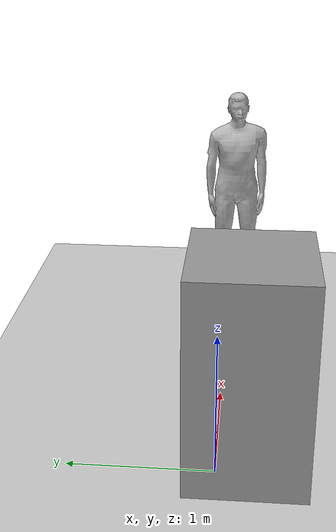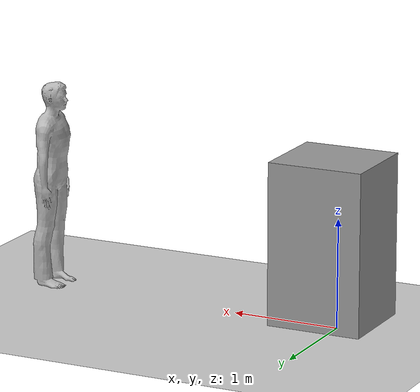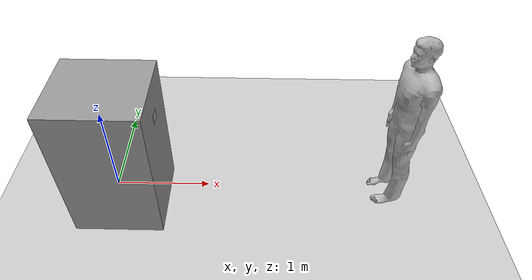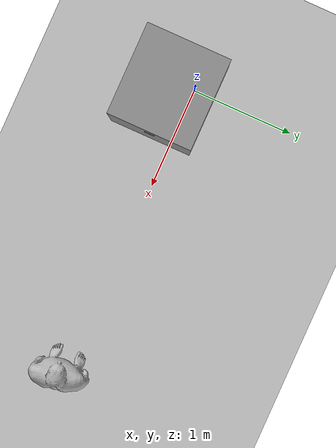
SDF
<sdf version="1.6">
 <world name="default">
  <light name="sun" type="directional">
   <pose>0 0 10 0 -0 0</pose>
   <diffuse>0.8 0.8 0.8 1</diffuse>
   <specular>0.2 0.2 0.2 1</specular>
   <attenuation>
    <range>1000</range>
    <constant>0.9</constant>
    <linear>0.01</linear>
    <quadratic>0.001</quadratic>
   </attenuation>
   <direction>-0.5 0.1 -0.9</direction>
  </light>
  <model name="ground_plane">
   <static>1</static>
   <link name="link">
    <collision name="collision">
     <geometry><plane><normal>0 0 1</normal><size>100 100</size></plane></geometry>
     <surface>
      <contact><collide_bitmask>65535</collide_bitmask></contact>
      <friction><ode><mu>100</mu><mu2>50</mu2></ode></friction>
     </surface>
    </collision>
    <visual name="visual">
     <cast_shadows>0</cast_shadows>
     <geometry><plane><normal>0 0 1</normal><size>100 100</size></plane></geometry>
     <material>
      <script><uri>file://media/materials/scripts/gazebo.material</uri><name>Gazebo/Grey</name></script>
     </material>
    </visual>
   </link>
  </model>
  <gravity>0 0 -9.8</gravity>
  <magnetic_field>6e-06 2.3e-05 -4.2e-05</magnetic_field>
  <atmosphere type="adiabatic"/>
  <physics name="default_physics" default="0" type="ode">
   <max_step_size>0.001</max_step_size>
   <real_time_factor>1</real_time_factor>
   <real_time_update_rate>1000</real_time_update_rate>
  </physics>
  <scene><ambient>0.4 0.4 0.4 1</ambient><background>0.7 0.7 0.7 1</background><shadows>1</shadows></scene>
  <spherical_coordinates>
   <surface_model>EARTH_WGS84</surface_model>
   <latitude_deg>0</latitude_deg>
   <longitude_deg>0</longitude_deg>
   <elevation>0</elevation>
   <heading_deg>0</heading_deg>
  </spherical_coordinates>
  <model name="person_standing">
   <link name="link">
    <inertial>
     <pose>0 -0.1 0.95 0 -0 0</pose>
     <mass>80</mass>
     <inertia><ixx>24.88</ixx><ixy>0</ixy><ixz>0</ixz><iyy>25.73</iyy><iyz>0</iyz><izz>2.48</izz></inertia>
    </inertial>
    <collision name="bottom">
     <pose>0 -0.1 0.01 0 -0 0</pose>
     <geometry><box><size>0.5 0.35 0.02</size></box></geometry>
    </collision>
    <collision name="person">
     <pose>0 0 0.02 0.04 -0 0</pose>
     <geometry><mesh><uri>model://person_standing/meshes/standing.dae</uri></mesh></geometry>
    </collision>
    <visual name="visual">
     <pose>0 0 0.02 0.04 -0 0</pose>
     <geometry><mesh><uri>model://person_standing/meshes/standing.dae</uri></mesh></geometry>
    </visual>
   </link>
   <pose>2.97793 -0.046885 -1e-06 -1e-06 -1e-06 -1.50214</pose>
  </model>
  <model name="teresa_lightweight">
   <link name="teresa_lightweight::link">
    <inertial>
     <mass>0.831307</mass>
     <inertia>
      <ixx>0.201377</ixx>
      <ixy>0</ixy>
      <ixz>0</ixz>
      <iyy>0.209479</iyy>
      <iyz>0</iyz>
      <izz>0.10052</izz>
     </inertia>
    </inertial>
    <pose>-0.30381 -0 0.77 0 -0 0</pose>
    <visual name="visual">
     <geometry><box><size>0.885428 0.816719 1.49662</size></box></geometry>
     <material>
      <script><name>Gazebo/Grey</name><uri>file://media/materials/scripts/gazebo.material</uri></script>
      <shader type="pixel"><normal_map>__default__</normal_map></shader>
      <ambient>0.3 0.3 0.3 1</ambient>
      <diffuse>0.7 0.7 0.7 1</diffuse>
      <specular>0.01 0.01 0.01 1</specular>
      <emissive>0 0 0 1</emissive>
     </material>
    </visual>
    <collision name="collision">
     <geometry><box><size>0.885428 0.816719 1.49662</size></box></geometry>
     <surface>
      <friction>
       <ode><mu>1</mu><mu2>1</mu2><fdir1>0 0 0</fdir1><slip1>0</slip1><slip2>0</slip2></ode>
       <torsional>
        <coefficient>1</coefficient>
        <patch_radius>0</patch_radius>
        <surface_radius>0</surface_radius>
        <use_patch_radius>1</use_patch_radius>
        <ode><slip>0</slip></ode>
       </torsional>
      </friction>
      <bounce><restitution_coefficient>0</restitution_coefficient><threshold>1e+06</threshold></bounce>
      <contact>
       <collide_without_contact>0</collide_without_contact>
       <collide_without_contact_bitmask>1</collide_without_contact_bitmask>
       <collide_bitmask>1</collide_bitmask>
       <ode>
        <soft_cfm>0</soft_cfm>
        <soft_erp>0.2</soft_erp>
        <kp>1e+13</kp>
        <kd>1</kd>
        <max_vel>0.01</max_vel>
        <min_depth>0</min_depth>
       </ode>
       <bullet>
        <split_impulse>1</split_impulse>
        <split_impulse_penetration_threshold>-0.01</split_impulse_penetration_threshold>
        <soft_cfm>0</soft_cfm>
        <soft_erp>0.2</soft_erp>
        <kp>1e+13</kp>
        <kd>1</kd>
       </bullet>
      </contact>
     </surface>
    </collision>
   </link>
   <model name="camera">
    <pose>0.093429 0.004498 1.19476 0 -0 0</pose>
    <link name="link">
     <inertial>
      <mass>0.1</mass>
      <inertia>
       <ixx>0.000166667</ixx>
       <iyy>0.000166667</iyy>
       <izz>0.000166667</izz>
       <ixy>0</ixy>
       <ixz>0</ixz>
       <iyz>0</iyz>
      </inertia>
     </inertial>
     <collision name="collision"><geometry><box><size>0.1 0.1 0.1</size></box></geometry></collision>
     <visual name="visual"><geometry><box><size>0.1 0.1 0.1</size></box></geometry></visual>
     <sensor name="camera" type="camera">
      <camera name="__default__">
       <horizontal_fov>1.39626</horizontal_fov>
       <image><width>800</width><height>800</height></image>
       <clip><near>0.02</near><far>300</far></clip>
      </camera>
      <plugin name="camera_controller" filename="libgazebo_ros_camera.so">
       <alwaysOn>1</alwaysOn>
       <updateRate>0.0</updateRate>
       <cameraName>teresa_robot/head_camera</cameraName>
       <imageTopicName>image_raw</imageTopicName>
       <cameraInfoTopicName>camera_info</cameraInfoTopicName>
       <frameName>camera_link</frameName>
       <hackBaseline>0.07</hackBaseline>
       <distortionK1>0.0</distortionK1>
       <distortionK2>0.0</distortionK2>
       <distortionK3>0.0</distortionK3>
       <distortionT1>0.0</distortionT1>
       <distortionT2>0.0</distortionT2>
      </plugin>
      <always_on>1</always_on>
      <update_rate>30</update_rate>
      <visualize>1</visualize>
     </sensor>
    </link>
   </model>
   <joint name="link_JOINT_0" type="fixed">
    <parent>teresa_lightweight::link</parent>
    <child>camera::link</child>
    <physics>
     <ode><limit><cfm>0</cfm><erp>0.2</erp></limit><suspension><cfm>0</cfm><erp>0.2</erp></suspension></ode>
    </physics>
   </joint>
   <static>0</static>
   <plugin name="object_controller" filename="libgazebo_ros_planar_move.so">
    <commandTopic>cmd_vel</commandTopic>
    <odometryTopic>odom</odometryTopic>
    <odometryFrame>odom</odometryFrame>
    <odometryRate>20.0</odometryRate>
    <robotBaseFrame>base_footprint</robotBaseFrame>
   </plugin>
   <pose>0.448555 -0.201256 -0.021694 0 6e-06 0.000301</pose>
  </model>
 </world>
</sdf>
